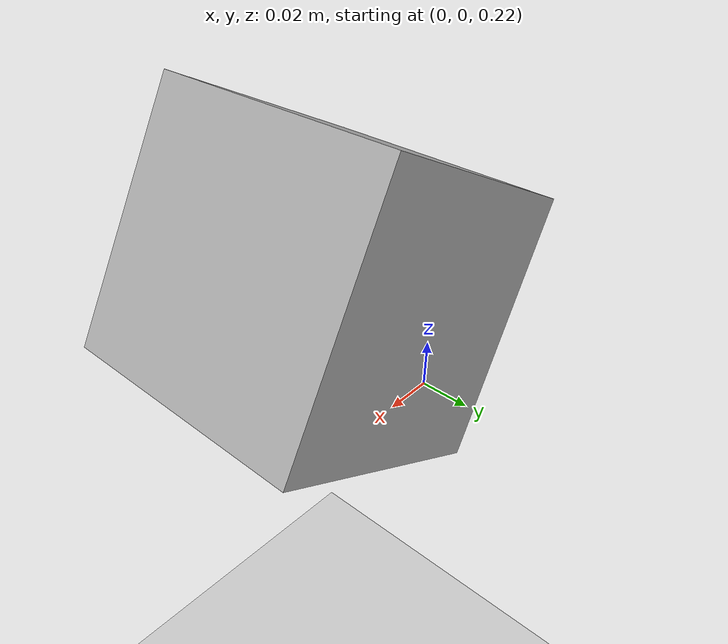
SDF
<sdf version="1.6">
 <world name="default">
  <light name="sun" type="directional">
   <pose>0 0 10 0 -0 0</pose>
   <diffuse>0.8 0.8 0.8 1</diffuse>
   <specular>0.1 0.1 0.1 1</specular>
   <attenuation>
    <range>1000</range>
    <constant>0.9</constant>
    <linear>0.01</linear>
    <quadratic>0.001</quadratic>
   </attenuation>
   <direction>-0.5 0.5 -1</direction>
  </light>
  <model name="ground_plane">
   <static>1</static>
   <link name="link">
    <collision name="collision">
     <geometry><plane><normal>0 0 1</normal><size>100 100</size></plane></geometry>
     <surface><friction><ode><mu>100</mu><mu2>50</mu2></ode></friction></surface>
    </collision>
    <visual name="visual">
     <cast_shadows>0</cast_shadows>
     <geometry><plane><normal>0 0 1</normal><size>100 100</size></plane></geometry>
     <material>
      <script><uri>file://media/materials/scripts/gazebo.material</uri><name>Gazebo/Grey</name></script>
     </material>
    </visual>
   </link>
  </model>
  <gravity>0 0 -9.8</gravity>
  <magnetic_field>6e-06 2.3e-05 -4.2e-05</magnetic_field>
  <atmosphere type="adiabatic"/>
  <physics name="default_physics" default="0" type="ode">
   <max_step_size>0.001</max_step_size>
   <real_time_factor>1</real_time_factor>
   <real_time_update_rate>1000</real_time_update_rate>
  </physics>
  <scene><ambient>0.4 0.4 0.4 1</ambient><background>0.7 0.7 0.7 1</background><shadows>1</shadows></scene>
  <spherical_coordinates>
   <surface_model>EARTH_WGS84</surface_model>
   <latitude_deg>0</latitude_deg>
   <longitude_deg>0</longitude_deg>
   <elevation>0</elevation>
   <heading_deg>0</heading_deg>
  </spherical_coordinates>
  <model name="camera">
   <static>1</static>
   <link name="link">
    <gravity>0</gravity>
    <pose>0.05 0.05 0.05 0 -0 0</pose>
    <inertial><mass>0.1</mass></inertial>
    <visual name="visual"><geometry><box><size>0.1 0.1 0.1</size></box></geometry></visual>
    <sensor name="camera1" type="camera">
     <camera name="__default__">
      <horizontal_fov>1.047</horizontal_fov>
      <image><width>320</width><height>240</height></image>
      <clip><near>0.1</near><far>100</far></clip>
     </camera>
     <always_on>1</always_on>
     <update_rate>30</update_rate>
     <visualize>1</visualize>
     <plugin name="camera_controller" filename="libgazebo_ros_camera.so">
      <alwaysOn>true</alwaysOn>
      <updateRate>0.0</updateRate>
      <cameraName>camera1</cameraName>
      <imageTopicName>image_raw</imageTopicName>
      <cameraInfoTopicName>camera_info</cameraInfoTopicName>
      <frameName>camera_link_optical</frameName>
      <hackBaseline>0.0</hackBaseline>
      <distortionK1>0.0</distortionK1>
      <distortionK2>0.0</distortionK2>
      <distortionK3>0.0</distortionK3>
      <distortionT1>0.0</distortionT1>
      <distortionT2>0.0</distortionT2>
      <CxPrime>0</CxPrime>
      <Cx>0.0</Cx>
      <Cy>0.0</Cy>
      <focalLength>0.0</focalLength>
     </plugin>
    </sensor>
   </link>
   <pose>-0.030588 -0.07266 0.3 0 1.1 0</pose>
  </model>
 </world>
</sdf>
